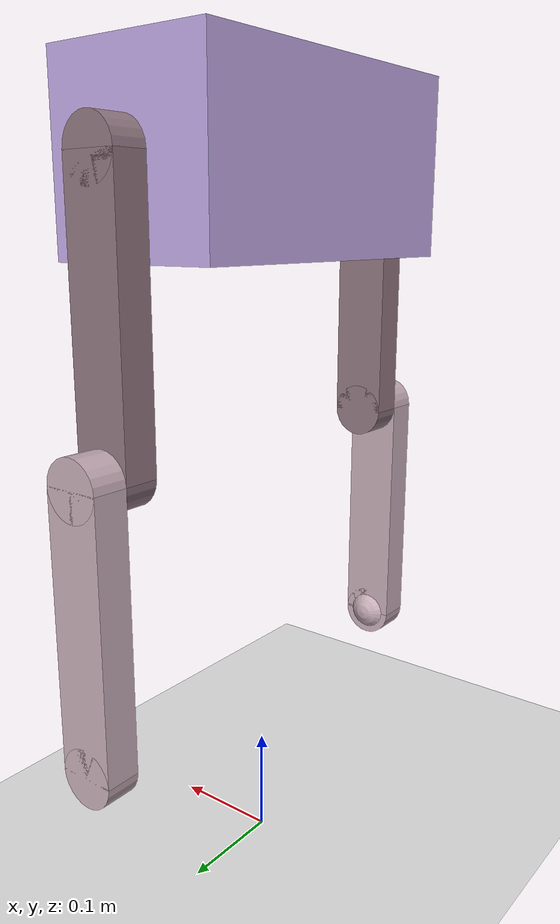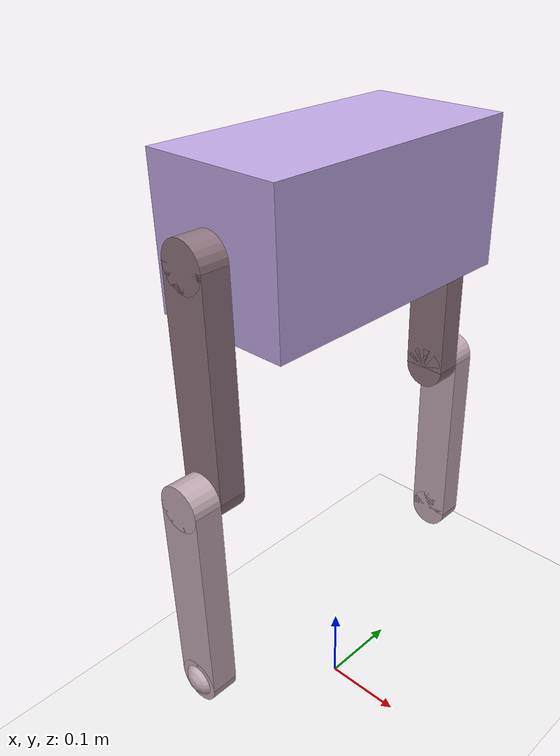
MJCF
<mujoco>
	<option gravity="0 0 -9.8" timestep="0.002" />
    <asset>
		<material name = "torso" rgba = ".76 .66 .9 1" />
		<material name = "link1" rgba = ".56 .46 .5 1" />
		<material name = "link2" rgba = ".76 .66 .7 1" />
    	<texture type="skybox" builtin="gradient" rgb1="1 1 1" rgb2=".6 .8 1" width="256" height="256"/>
    </asset>
	<worldbody>
        <light diffuse=".7 .7 .7" pos="0 0 3" dir="0 0 -10"/>
		<geom type="plane" size="1 1 0.1" rgba=".95 .95 .95 1"/>

		<body pos = "0 0 0.65">
            <joint type = "free" pos="0 0 0"/>
			<geom type="box" size=".08 .16 .08" material = "torso" mass="10"/>
			<body pos="0 -.18 -0.12" euler ="90 0 0">
				<joint name="jointA" type = "hinge" axis="0 0 1" pos="0 .125 0"/>
				<geom type="box" size=".026 .12 .016" material ="link1" mass="2"/>
                <geom type="cylinder" size=".026 .016" pos="0 .12 0" material ="link1"/>
                <geom type="cylinder" size=".026 .016" pos="0 -.12 0" material ="link1"/>
                <body pos="0 -.24 .032">
				    <joint name="jointB" type = "hinge" axis="0 0 1" pos="0 .125 0"/>
				    <geom type="box" size=".026 .12 .016" material = "link2" mass = "1"/>
                    <geom type="cylinder" size=".026 .016" pos="0 .12 0" material ="link2"/>
                    <geom type="cylinder" size=".026 .016" pos="0 -.12 0" material ="link2"/>
					<site name='tip' size = "0.025" pos = "0 -.12 0" material ="link2"/>
			    </body>
            </body>
            <body pos="0 .18 -0.12" euler ="90 0 0">
				<joint name="jointC" type = "hinge" axis="0 0 1" pos="0 .125 0"/>
				<geom type="box" size=".026 .12 .016" material ="link1" mass="2"/>
                <geom type="cylinder" size=".026 .016" pos="0 .12 0" material ="link1"/>
                <geom type="cylinder" size=".026 .016" pos="0 -.12 0" material ="link1"/>
                <body pos="0 -.24 -.032">
				    <joint name="jointD" type = "hinge" axis="0 0 1" pos="0 .125 0"/>
				    <geom type="box" size=".026 .12 .016" material = "link2" mass = "1"/>
                    <geom type="cylinder" size=".026 .016" pos="0 .12 0" material ="link2"/>
                    <geom type="cylinder" size=".026 .016" pos="0 -.12 0" material ="link2"/>
			    </body>
            </body>
		</body>

	</worldbody>
    <actuator>
		<motor name="torqueA" joint="jointA"  gear="1" ctrllimited="true" ctrlrange="-10 10"/>
		<position name ="pos_servoA" joint="jointA" kp="0"/>
		<velocity name ="vel_servoA" joint="jointA" kv="0"/>
		<motor name="torqueB" joint="jointB"  gear="1" ctrllimited="true" ctrlrange="-10 10"/>
		<position name ="pos_servoB" joint="jointB" kp="0"/>
		<velocity name ="vel_servoB" joint="jointB" kv="0"/>
        <motor name="torqueC" joint="jointC"  gear="1" ctrllimited="true" ctrlrange="-10 10"/>
		<position name ="pos_servoC" joint="jointC" kp="0"/>
		<velocity name ="vel_servoC" joint="jointC" kv="0"/>
		<motor name="torqueD" joint="jointD"  gear="1" ctrllimited="true" ctrlrange="-10 10"/>
		<position name ="pos_servoD" joint="jointD" kp="0"/>
		<velocity name ="vel_servoD" joint="jointD" kv="0"/>
    </actuator>
	<sensor>
		<framepos objtype="site" objname="tip"/>
	</sensor>
</mujoco>
